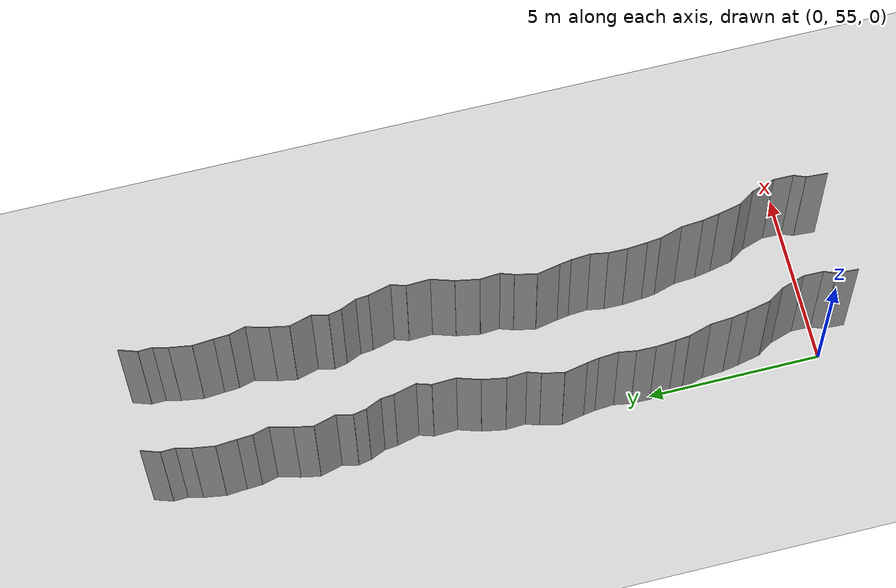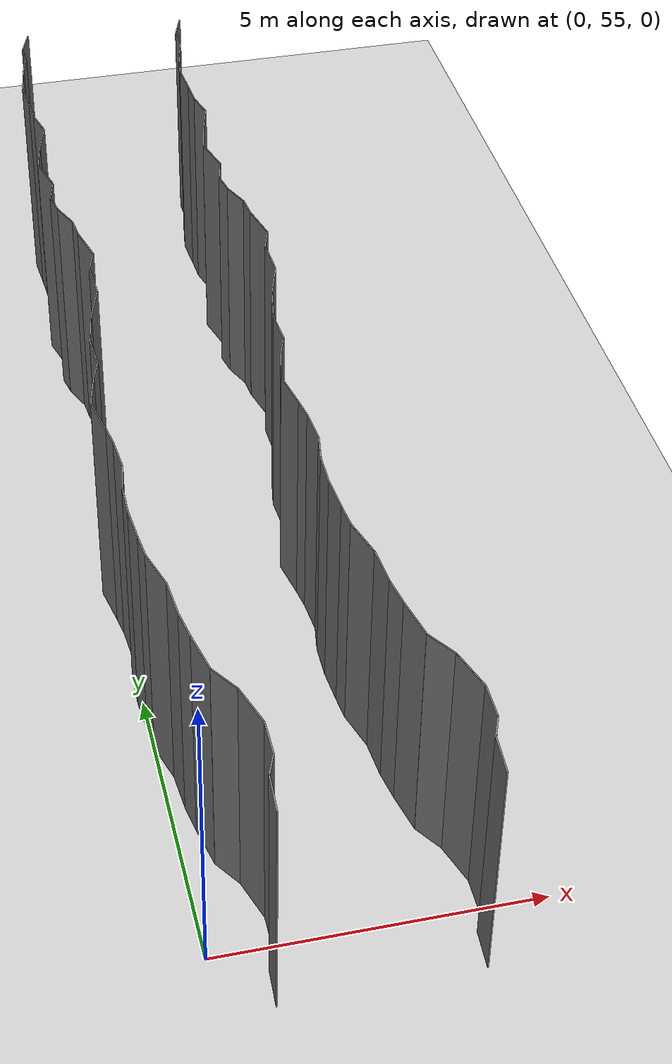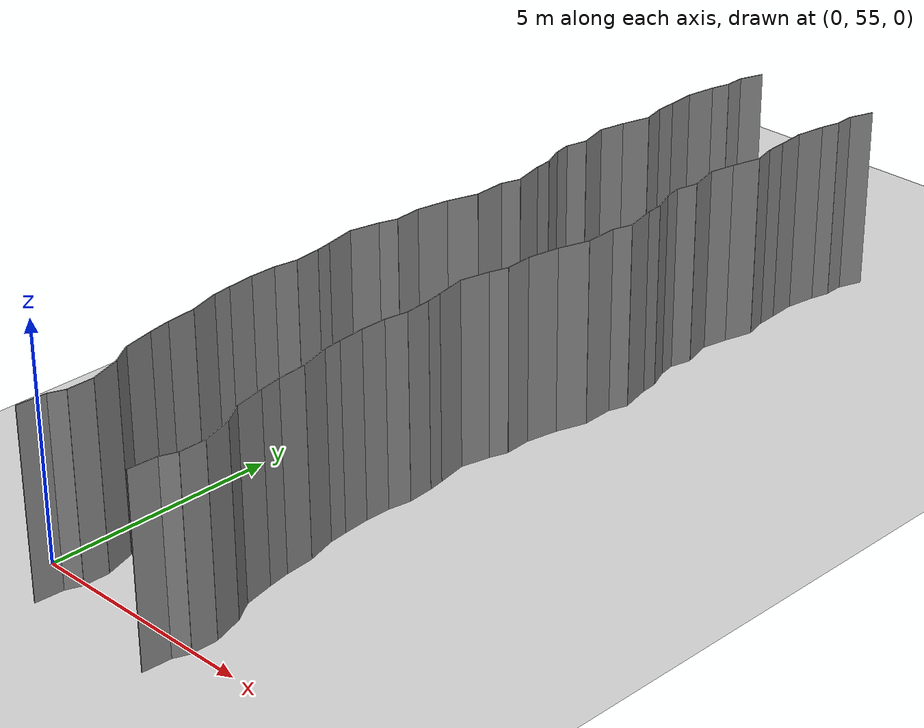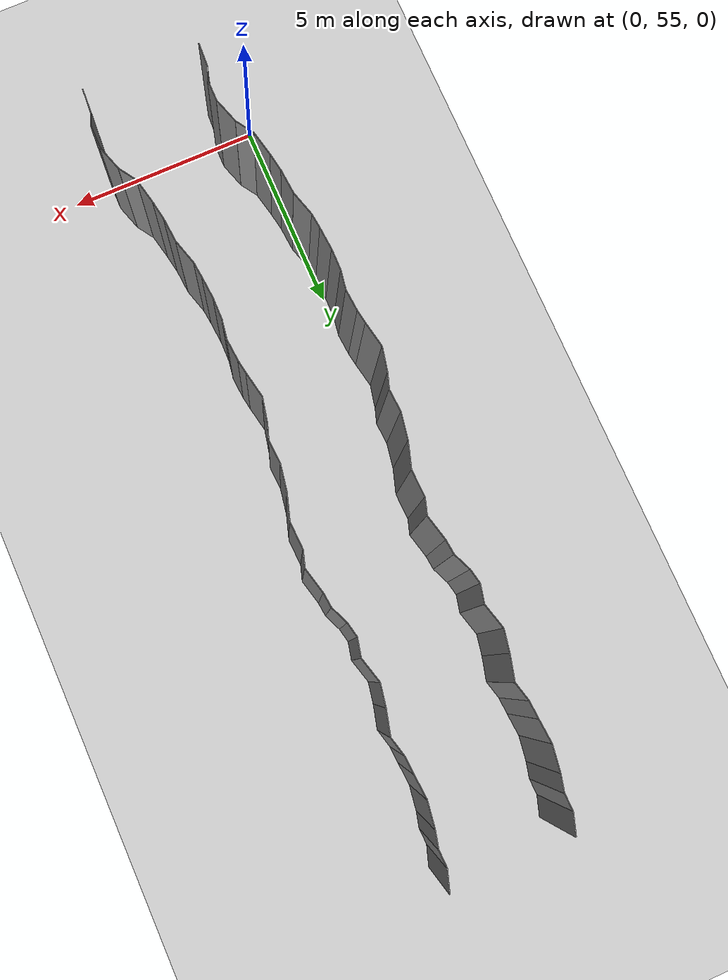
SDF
<sdf version="1.6">
 <world name="default">
  <model name="ground_plane">
   <static>1</static>
   <link name="link">
    <collision name="collision">
     <geometry><plane><normal>0 0 1</normal><size>200 200</size></plane></geometry>
     <surface><friction><ode><mu>100</mu><mu2>50</mu2></ode></friction></surface>
    </collision>
    <visual name="visual">
     <cast_shadows>0</cast_shadows>
     <geometry><plane><normal>0 0 1</normal><size>200 200</size></plane></geometry>
     <material>
      <script><uri>file://media/materials/scripts/gazebo.material</uri><name>Gazebo/Grey</name></script>
     </material>
    </visual>
   </link>
   <pose>0 100 0 0 -0 0</pose>
  </model>
  <model name="wall_224">
   <static>1</static>
   <pose>0.8056590098814278 54.31773338226374 2 0 0 -0.059114742278021895</pose>
   <link name="link">
    <collision name="collision"><geometry><box><size>0.02 0.617377208747 4</size></box></geometry></collision>
    <visual name="visual">
     <material>
      <script><name>Gazebo/Grey</name><uri>file://media/materials/scripts/gazebo.material</uri></script>
     </material>
     <geometry><box><size>0.02 0.617377208747 4</size></box></geometry>
    </visual>
   </link>
  </model>
  <model name="wall_225">
   <static>1</static>
   <pose>3.8056590098814276 54.31773338226374 2 0 0 -0.059114742278021895</pose>
   <link name="link">
    <collision name="collision"><geometry><box><size>0.02 0.617377208747 4</size></box></geometry></collision>
    <visual name="visual">
     <material>
      <script><name>Gazebo/Grey</name><uri>file://media/materials/scripts/gazebo.material</uri></script>
     </material>
     <geometry><box><size>0.02 0.617377208747 4</size></box></geometry>
    </visual>
   </link>
  </model>
  <model name="wall_226">
   <static>1</static>
   <pose>0.8901326309300028 54.79336522843904 2 0 0 -0.3766050071950121</pose>
   <link name="link">
    <collision name="collision"><geometry><box><size>0.02 0.360208855727 4</size></box></geometry></collision>
    <visual name="visual">
     <material>
      <script><name>Gazebo/Grey</name><uri>file://media/materials/scripts/gazebo.material</uri></script>
     </material>
     <geometry><box><size>0.02 0.360208855727 4</size></box></geometry>
    </visual>
   </link>
  </model>
  <model name="wall_227">
   <static>1</static>
   <pose>3.890132630930003 54.79336522843904 2 0 0 -0.3766050071950121</pose>
   <link name="link">
    <collision name="collision"><geometry><box><size>0.02 0.360208855727 4</size></box></geometry></collision>
    <visual name="visual">
     <material>
      <script><name>Gazebo/Grey</name><uri>file://media/materials/scripts/gazebo.material</uri></script>
     </material>
     <geometry><box><size>0.02 0.360208855727 4</size></box></geometry>
    </visual>
   </link>
  </model>
  <model name="wall_228">
   <static>1</static>
   <pose>0.9591205280391623 55.24517324637543 2 0 0 -0.009677677552940177</pose>
   <link name="link">
    <collision name="collision"><geometry><box><size>0.02 0.568677768005 4</size></box></geometry></collision>
    <visual name="visual">
     <material>
      <script><name>Gazebo/Grey</name><uri>file://media/materials/scripts/gazebo.material</uri></script>
     </material>
     <geometry><box><size>0.02 0.568677768005 4</size></box></geometry>
    </visual>
   </link>
  </model>
  <model name="wall_229">
   <static>1</static>
   <pose>3.959120528039162 55.24517324637543 2 0 0 -0.009677677552940177</pose>
   <link name="link">
    <collision name="collision"><geometry><box><size>0.02 0.568677768005 4</size></box></geometry></collision>
    <visual name="visual">
     <material>
      <script><name>Gazebo/Grey</name><uri>file://media/materials/scripts/gazebo.material</uri></script>
     </material>
     <geometry><box><size>0.02 0.568677768005 4</size></box></geometry>
    </visual>
   </link>
  </model>
  <model name="wall_230">
   <static>1</static>
   <pose>0.8561849291502885 55.861212692818185 2 0 0 0.3084413797041989</pose>
   <link name="link">
    <collision name="collision"><geometry><box><size>0.02 0.696287012941 4</size></box></geometry></collision>
    <visual name="visual">
     <material>
      <script><name>Gazebo/Grey</name><uri>file://media/materials/scripts/gazebo.material</uri></script>
     </material>
     <geometry><box><size>0.02 0.696287012941 4</size></box></geometry>
    </visual>
   </link>
  </model>
  <model name="wall_231">
   <static>1</static>
   <pose>3.8561849291502885 55.861212692818185 2 0 0 0.3084413797041989</pose>
   <link name="link">
    <collision name="collision"><geometry><box><size>0.02 0.696287012941 4</size></box></geometry></collision>
    <visual name="visual">
     <material>
      <script><name>Gazebo/Grey</name><uri>file://media/materials/scripts/gazebo.material</uri></script>
     </material>
     <geometry><box><size>0.02 0.696287012941 4</size></box></geometry>
    </visual>
   </link>
  </model>
  <model name="wall_232">
   <static>1</static>
   <pose>0.6079775538636059 56.411677962524635 2 0 0 0.5774403636264729</pose>
   <link name="link">
    <collision name="collision"><geometry><box><size>0.02 0.522165278712 4</size></box></geometry></collision>
    <visual name="visual">
     <material>
      <script><name>Gazebo/Grey</name><uri>file://media/materials/scripts/gazebo.material</uri></script>
     </material>
     <geometry><box><size>0.02 0.522165278712 4</size></box></geometry>
    </visual>
   </link>
  </model>
  <model name="wall_233">
   <static>1</static>
   <pose>3.6079775538636056 56.411677962524635 2 0 0 0.5774403636264729</pose>
   <link name="link">
    <collision name="collision"><geometry><box><size>0.02 0.522165278712 4</size></box></geometry></collision>
    <visual name="visual">
     <material>
      <script><name>Gazebo/Grey</name><uri>file://media/materials/scripts/gazebo.material</uri></script>
     </material>
     <geometry><box><size>0.02 0.522165278712 4</size></box></geometry>
    </visual>
   </link>
  </model>
  <model name="wall_234">
   <static>1</static>
   <pose>0.39477185082711574 56.959786793956944 2 0 0 0.21140981567310108</pose>
   <link name="link">
    <collision name="collision"><geometry><box><size>0.02 0.673714420851 4</size></box></geometry></collision>
    <visual name="visual">
     <material>
      <script><name>Gazebo/Grey</name><uri>file://media/materials/scripts/gazebo.material</uri></script>
     </material>
     <geometry><box><size>0.02 0.673714420851 4</size></box></geometry>
    </visual>
   </link>
  </model>
  <model name="wall_235">
   <static>1</static>
   <pose>3.394771850827116 56.959786793956944 2 0 0 0.21140981567310108</pose>
   <link name="link">
    <collision name="collision"><geometry><box><size>0.02 0.673714420851 4</size></box></geometry></collision>
    <visual name="visual">
     <material>
      <script><name>Gazebo/Grey</name><uri>file://media/materials/scripts/gazebo.material</uri></script>
     </material>
     <geometry><box><size>0.02 0.673714420851 4</size></box></geometry>
    </visual>
   </link>
  </model>
  <model name="wall_236">
   <static>1</static>
   <pose>0.28404481822298366 57.52552170772036 2 0 0 0.1678031059477949</pose>
   <link name="link">
    <collision name="collision"><geometry><box><size>0.02 0.479489832486 4</size></box></geometry></collision>
    <visual name="visual">
     <material>
      <script><name>Gazebo/Grey</name><uri>file://media/materials/scripts/gazebo.material</uri></script>
     </material>
     <geometry><box><size>0.02 0.479489832486 4</size></box></geometry>
    </visual>
   </link>
  </model>
  <model name="wall_237">
   <static>1</static>
   <pose>3.2840448182229838 57.52552170772036 2 0 0 0.1678031059477949</pose>
   <link name="link">
    <collision name="collision"><geometry><box><size>0.02 0.479489832486 4</size></box></geometry></collision>
    <visual name="visual">
     <material>
      <script><name>Gazebo/Grey</name><uri>file://media/materials/scripts/gazebo.material</uri></script>
     </material>
     <geometry><box><size>0.02 0.479489832486 4</size></box></geometry>
    </visual>
   </link>
  </model>
  <model name="wall_238">
   <static>1</static>
   <pose>0.22006617812332027 58.07564480737474 2 0 0 0.07614750671300541</pose>
   <link name="link">
    <collision name="collision"><geometry><box><size>0.02 0.62931489211 4</size></box></geometry></collision>
    <visual name="visual">
     <material>
      <script><name>Gazebo/Grey</name><uri>file://media/materials/scripts/gazebo.material</uri></script>
     </material>
     <geometry><box><size>0.02 0.62931489211 4</size></box></geometry>
    </visual>
   </link>
  </model>
  <model name="wall_239">
   <static>1</static>
   <pose>3.22006617812332 58.07564480737474 2 0 0 0.07614750671300541</pose>
   <link name="link">
    <collision name="collision"><geometry><box><size>0.02 0.62931489211 4</size></box></geometry></collision>
    <visual name="visual">
     <material>
      <script><name>Gazebo/Grey</name><uri>file://media/materials/scripts/gazebo.material</uri></script>
     </material>
     <geometry><box><size>0.02 0.62931489211 4</size></box></geometry>
    </visual>
   </link>
  </model>
  <model name="wall_240">
   <static>1</static>
   <pose>0.1028596452551662 58.7123552896851 2 0 0 0.28114172969462664</pose>
   <link name="link">
    <collision name="collision"><geometry><box><size>0.02 0.67232569956 4</size></box></geometry></collision>
    <visual name="visual">
     <material>
      <script><name>Gazebo/Grey</name><uri>file://media/materials/scripts/gazebo.material</uri></script>
     </material>
     <geometry><box><size>0.02 0.67232569956 4</size></box></geometry>
    </visual>
   </link>
  </model>
  <model name="wall_241">
   <static>1</static>
   <pose>3.102859645255166 58.7123552896851 2 0 0 0.28114172969462664</pose>
   <link name="link">
    <collision name="collision"><geometry><box><size>0.02 0.67232569956 4</size></box></geometry></collision>
    <visual name="visual">
     <material>
      <script><name>Gazebo/Grey</name><uri>file://media/materials/scripts/gazebo.material</uri></script>
     </material>
     <geometry><box><size>0.02 0.67232569956 4</size></box></geometry>
    </visual>
   </link>
  </model>
  <model name="wall_242">
   <static>1</static>
   <pose>-0.010414972050330328 59.23119501109996 2 0 0 0.10178022680886872</pose>
   <link name="link">
    <collision name="collision"><geometry><box><size>0.02 0.393787633695 4</size></box></geometry></collision>
    <visual name="visual">
     <material>
      <script><name>Gazebo/Grey</name><uri>file://media/materials/scripts/gazebo.material</uri></script>
     </material>
     <geometry><box><size>0.02 0.393787633695 4</size></box></geometry>
    </visual>
   </link>
  </model>
  <model name="wall_243">
   <static>1</static>
   <pose>2.9895850279496696 59.23119501109996 2 0 0 0.10178022680886872</pose>
   <link name="link">
    <collision name="collision"><geometry><box><size>0.02 0.393787633695 4</size></box></geometry></collision>
    <visual name="visual">
     <material>
      <script><name>Gazebo/Grey</name><uri>file://media/materials/scripts/gazebo.material</uri></script>
     </material>
     <geometry><box><size>0.02 0.393787633695 4</size></box></geometry>
    </visual>
   </link>
  </model>
  <model name="wall_244">
   <static>1</static>
   <pose>-0.052458481619659034 59.714779440178205 2 0 0 0.07644946724081507</pose>
   <link name="link">
    <collision name="collision"><geometry><box><size>0.02 0.577104758826 4</size></box></geometry></collision>
    <visual name="visual">
     <material>
      <script><name>Gazebo/Grey</name><uri>file://media/materials/scripts/gazebo.material</uri></script>
     </material>
     <geometry><box><size>0.02 0.577104758826 4</size></box></geometry>
    </visual>
   </link>
  </model>
  <model name="wall_245">
   <static>1</static>
   <pose>2.947541518380341 59.714779440178205 2 0 0 0.07644946724081507</pose>
   <link name="link">
    <collision name="collision"><geometry><box><size>0.02 0.577104758826 4</size></box></geometry></collision>
    <visual name="visual">
     <material>
      <script><name>Gazebo/Grey</name><uri>file://media/materials/scripts/gazebo.material</uri></script>
     </material>
     <geometry><box><size>0.02 0.577104758826 4</size></box></geometry>
    </visual>
   </link>
  </model>
  <model name="wall_246">
   <static>1</static>
   <pose>-0.07018457049333275 60.277054071006035 2 0 0 -0.015703929944146527</pose>
   <link name="link">
    <collision name="collision"><geometry><box><size>0.02 0.549197850455 4</size></box></geometry></collision>
    <visual name="visual">
     <material>
      <script><name>Gazebo/Grey</name><uri>file://media/materials/scripts/gazebo.material</uri></script>
     </material>
     <geometry><box><size>0.02 0.549197850455 4</size></box></geometry>
    </visual>
   </link>
  </model>
  <model name="wall_247">
   <static>1</static>
   <pose>2.929815429506667 60.277054071006035 2 0 0 -0.015703929944146527</pose>
   <link name="link">
    <collision name="collision"><geometry><box><size>0.02 0.549197850455 4</size></box></geometry></collision>
    <visual name="visual">
     <material>
      <script><name>Gazebo/Grey</name><uri>file://media/materials/scripts/gazebo.material</uri></script>
     </material>
     <geometry><box><size>0.02 0.549197850455 4</size></box></geometry>
    </visual>
   </link>
  </model>
  <model name="wall_248">
   <static>1</static>
   <pose>-0.02393630450463715 60.79490404957686 2 0 0 -0.1706972352340727</pose>
   <link name="link">
    <collision name="collision"><geometry><box><size>0.02 0.493745644084 4</size></box></geometry></collision>
    <visual name="visual">
     <material>
      <script><name>Gazebo/Grey</name><uri>file://media/materials/scripts/gazebo.material</uri></script>
     </material>
     <geometry><box><size>0.02 0.493745644084 4</size></box></geometry>
    </visual>
   </link>
  </model>
  <model name="wall_249">
   <static>1</static>
   <pose>2.976063695495363 60.79490404957686 2 0 0 -0.1706972352340727</pose>
   <link name="link">
    <collision name="collision"><geometry><box><size>0.02 0.493745644084 4</size></box></geometry></collision>
    <visual name="visual">
     <material>
      <script><name>Gazebo/Grey</name><uri>file://media/materials/scripts/gazebo.material</uri></script>
     </material>
     <geometry><box><size>0.02 0.493745644084 4</size></box></geometry>
    </visual>
   </link>
  </model>
  <model name="wall_250">
   <static>1</static>
   <pose>-0.0032400873763755896 61.31979634331565 2 0 0 0.07528142278861315</pose>
   <link name="link">
    <collision name="collision"><geometry><box><size>0.02 0.564814491176 4</size></box></geometry></collision>
    <visual name="visual">
     <material>
      <script><name>Gazebo/Grey</name><uri>file://media/materials/scripts/gazebo.material</uri></script>
     </material>
     <geometry><box><size>0.02 0.564814491176 4</size></box></geometry>
    </visual>
   </link>
  </model>
  <model name="wall_251">
   <static>1</static>
   <pose>2.9967599126236246 61.31979634331565 2 0 0 0.07528142278861315</pose>
   <link name="link">
    <collision name="collision"><geometry><box><size>0.02 0.564814491176 4</size></box></geometry></collision>
    <visual name="visual">
     <material>
      <script><name>Gazebo/Grey</name><uri>file://media/materials/scripts/gazebo.material</uri></script>
     </material>
     <geometry><box><size>0.02 0.564814491176 4</size></box></geometry>
    </visual>
   </link>
  </model>
  <model name="wall_252">
   <static>1</static>
   <pose>-0.05191895540577216 61.771835090424716 2 0 0 0.15962714219780696</pose>
   <link name="link">
    <collision name="collision"><geometry><box><size>0.02 0.345252053126 4</size></box></geometry></collision>
    <visual name="visual">
     <material>
      <script><name>Gazebo/Grey</name><uri>file://media/materials/scripts/gazebo.material</uri></script>
     </material>
     <geometry><box><size>0.02 0.345252053126 4</size></box></geometry>
    </visual>
   </link>
  </model>
  <model name="wall_253">
   <static>1</static>
   <pose>2.948081044594228 61.771835090424716 2 0 0 0.15962714219780696</pose>
   <link name="link">
    <collision name="collision"><geometry><box><size>0.02 0.345252053126 4</size></box></geometry></collision>
    <visual name="visual">
     <material>
      <script><name>Gazebo/Grey</name><uri>file://media/materials/scripts/gazebo.material</uri></script>
     </material>
     <geometry><box><size>0.02 0.345252053126 4</size></box></geometry>
    </visual>
   </link>
  </model>
  <model name="wall_254">
   <static>1</static>
   <pose>-0.14265088465057357 62.27265030474041 2 0 0 0.18928081034957028</pose>
   <link name="link">
    <collision name="collision"><geometry><box><size>0.02 0.672783744677 4</size></box></geometry></collision>
    <visual name="visual">
     <material>
      <script><name>Gazebo/Grey</name><uri>file://media/materials/scripts/gazebo.material</uri></script>
     </material>
     <geometry><box><size>0.02 0.672783744677 4</size></box></geometry>
    </visual>
   </link>
  </model>
  <model name="wall_255">
   <static>1</static>
   <pose>2.8573491153494266 62.27265030474041 2 0 0 0.18928081034957028</pose>
   <link name="link">
    <collision name="collision"><geometry><box><size>0.02 0.672783744677 4</size></box></geometry></collision>
    <visual name="visual">
     <material>
      <script><name>Gazebo/Grey</name><uri>file://media/materials/scripts/gazebo.material</uri></script>
     </material>
     <geometry><box><size>0.02 0.672783744677 4</size></box></geometry>
    </visual>
   </link>
  </model>
  <model name="wall_256">
   <static>1</static>
   <pose>-0.13674798947004102 62.913857924191895 2 0 0 -0.2190489300711773</pose>
   <link name="link">
    <collision name="collision"><geometry><box><size>0.02 0.636865729183 4</size></box></geometry></collision>
    <visual name="visual">
     <material>
      <script><name>Gazebo/Grey</name><uri>file://media/materials/scripts/gazebo.material</uri></script>
     </material>
     <geometry><box><size>0.02 0.636865729183 4</size></box></geometry>
    </visual>
   </link>
  </model>
  <model name="wall_257">
   <static>1</static>
   <pose>2.863252010529959 62.913857924191895 2 0 0 -0.2190489300711773</pose>
   <link name="link">
    <collision name="collision"><geometry><box><size>0.02 0.636865729183 4</size></box></geometry></collision>
    <visual name="visual">
     <material>
      <script><name>Gazebo/Grey</name><uri>file://media/materials/scripts/gazebo.material</uri></script>
     </material>
     <geometry><box><size>0.02 0.636865729183 4</size></box></geometry>
    </visual>
   </link>
  </model>
  <model name="wall_258">
   <static>1</static>
   <pose>-0.0037328185693722427 63.41366898429012 2 0 0 -0.3256671432479463</pose>
   <link name="link">
    <collision name="collision"><geometry><box><size>0.02 0.398944079968 4</size></box></geometry></collision>
    <visual name="visual">
     <material>
      <script><name>Gazebo/Grey</name><uri>file://media/materials/scripts/gazebo.material</uri></script>
     </material>
     <geometry><box><size>0.02 0.398944079968 4</size></box></geometry>
    </visual>
   </link>
  </model>
  <model name="wall_259">
   <static>1</static>
   <pose>2.996267181430628 63.41366898429012 2 0 0 -0.3256671432479463</pose>
   <link name="link">
    <collision name="collision"><geometry><box><size>0.02 0.398944079968 4</size></box></geometry></collision>
    <visual name="visual">
     <material>
      <script><name>Gazebo/Grey</name><uri>file://media/materials/scripts/gazebo.material</uri></script>
     </material>
     <geometry><box><size>0.02 0.398944079968 4</size></box></geometry>
    </visual>
   </link>
  </model>
  <model name="wall_260">
   <static>1</static>
   <pose>0.04306017160144234 63.8899680322878 2 0 0 0.05919142108449459</pose>
   <link name="link">
    <collision name="collision"><geometry><box><size>0.02 0.575631621977 4</size></box></geometry></collision>
    <visual name="visual">
     <material>
      <script><name>Gazebo/Grey</name><uri>file://media/materials/scripts/gazebo.material</uri></script>
     </material>
     <geometry><box><size>0.02 0.575631621977 4</size></box></geometry>
    </visual>
   </link>
  </model>
  <model name="wall_261">
   <static>1</static>
   <pose>3.0430601716014425 63.8899680322878 2 0 0 0.05919142108449459</pose>
   <link name="link">
    <collision name="collision"><geometry><box><size>0.02 0.575631621977 4</size></box></geometry></collision>
    <visual name="visual">
     <material>
      <script><name>Gazebo/Grey</name><uri>file://media/materials/scripts/gazebo.material</uri></script>
     </material>
     <geometry><box><size>0.02 0.575631621977 4</size></box></geometry>
    </visual>
   </link>
  </model>
  <model name="wall_262">
   <static>1</static>
   <pose>0.08830755285589298 64.51679535501415 2 0 0 -0.18140281530318764</pose>
   <link name="link">
    <collision name="collision"><geometry><box><size>0.02 0.690358825544 4</size></box></geometry></collision>
    <visual name="visual">
     <material>
      <script><name>Gazebo/Grey</name><uri>file://media/materials/scripts/gazebo.material</uri></script>
     </material>
     <geometry><box><size>0.02 0.690358825544 4</size></box></geometry>
    </visual>
   </link>
  </model>
  <model name="wall_263">
   <static>1</static>
   <pose>3.088307552855893 64.51679535501415 2 0 0 -0.18140281530318764</pose>
   <link name="link">
    <collision name="collision"><geometry><box><size>0.02 0.690358825544 4</size></box></geometry></collision>
    <visual name="visual">
     <material>
      <script><name>Gazebo/Grey</name><uri>file://media/materials/scripts/gazebo.material</uri></script>
     </material>
     <geometry><box><size>0.02 0.690358825544 4</size></box></geometry>
    </visual>
   </link>
  </model>
  <model name="wall_264">
   <static>1</static>
   <pose>0.2535493825173636 65.17911293847378 2 0 0 -0.30877960900129214</pose>
   <link name="link">
    <collision name="collision"><geometry><box><size>0.02 0.677653561949 4</size></box></geometry></collision>
    <visual name="visual">
     <material>
      <script><name>Gazebo/Grey</name><uri>file://media/materials/scripts/gazebo.material</uri></script>
     </material>
     <geometry><box><size>0.02 0.677653561949 4</size></box></geometry>
    </visual>
   </link>
  </model>
  <model name="wall_265">
   <static>1</static>
   <pose>3.2535493825173636 65.17911293847378 2 0 0 -0.30877960900129214</pose>
   <link name="link">
    <collision name="collision"><geometry><box><size>0.02 0.677653561949 4</size></box></geometry></collision>
    <visual name="visual">
     <material>
      <script><name>Gazebo/Grey</name><uri>file://media/materials/scripts/gazebo.material</uri></script>
     </material>
     <geometry><box><size>0.02 0.677653561949 4</size></box></geometry>
    </visual>
   </link>
  </model>
  <model name="wall_266">
   <static>1</static>
   <pose>0.34430869706870176 65.84596681154103 2 0 0 0.03547062031450964</pose>
   <link name="link">
    <collision name="collision"><geometry><box><size>0.02 0.688536807795 4</size></box></geometry></collision>
    <visual name="visual">
     <material>
      <script><name>Gazebo/Grey</name><uri>file://media/materials/scripts/gazebo.material</uri></script>
     </material>
     <geometry><box><size>0.02 0.688536807795 4</size></box></geometry>
    </visual>
   </link>
  </model>
  <model name="wall_267">
   <static>1</static>
   <pose>3.3443086970687017 65.84596681154103 2 0 0 0.03547062031450964</pose>
   <link name="link">
    <collision name="collision"><geometry><box><size>0.02 0.688536807795 4</size></box></geometry></collision>
    <visual name="visual">
     <material>
      <script><name>Gazebo/Grey</name><uri>file://media/materials/scripts/gazebo.material</uri></script>
     </material>
     <geometry><box><size>0.02 0.688536807795 4</size></box></geometry>
    </visual>
   </link>
  </model>
  <model name="wall_268">
   <static>1</static>
   <pose>0.3970096323827168 66.39356093662171 2 0 0 -0.3087055087747413</pose>
   <link name="link">
    <collision name="collision"><geometry><box><size>0.02 0.427283217679 4</size></box></geometry></collision>
    <visual name="visual">
     <material>
      <script><name>Gazebo/Grey</name><uri>file://media/materials/scripts/gazebo.material</uri></script>
     </material>
     <geometry><box><size>0.02 0.427283217679 4</size></box></geometry>
    </visual>
   </link>
  </model>
  <model name="wall_269">
   <static>1</static>
   <pose>3.3970096323827166 66.39356093662171 2 0 0 -0.3087055087747413</pose>
   <link name="link">
    <collision name="collision"><geometry><box><size>0.02 0.427283217679 4</size></box></geometry></collision>
    <visual name="visual">
     <material>
      <script><name>Gazebo/Grey</name><uri>file://media/materials/scripts/gazebo.material</uri></script>
     </material>
     <geometry><box><size>0.02 0.427283217679 4</size></box></geometry>
    </visual>
   </link>
  </model>
  <model name="wall_270">
   <static>1</static>
   <pose>0.38187799443035875 66.92799257853059 2 0 0 0.23733869198365862</pose>
   <link name="link">
    <collision name="collision"><geometry><box><size>0.02 0.680865347327 4</size></box></geometry></collision>
    <visual name="visual">
     <material>
      <script><name>Gazebo/Grey</name><uri>file://media/materials/scripts/gazebo.material</uri></script>
     </material>
     <geometry><box><size>0.02 0.680865347327 4</size></box></geometry>
    </visual>
   </link>
  </model>
  <model name="wall_271">
   <static>1</static>
   <pose>3.3818779944303587 66.92799257853059 2 0 0 0.23733869198365862</pose>
   <link name="link">
    <collision name="collision"><geometry><box><size>0.02 0.680865347327 4</size></box></geometry></collision>
    <visual name="visual">
     <material>
      <script><name>Gazebo/Grey</name><uri>file://media/materials/scripts/gazebo.material</uri></script>
     </material>
     <geometry><box><size>0.02 0.680865347327 4</size></box></geometry>
    </visual>
   </link>
  </model>
  <model name="wall_272">
   <static>1</static>
   <pose>0.28402922696397415 67.4435669513461 2 0 0 0.09612292532141564</pose>
   <link name="link">
    <collision name="collision"><geometry><box><size>0.02 0.371083018056 4</size></box></geometry></collision>
    <visual name="visual">
     <material>
      <script><name>Gazebo/Grey</name><uri>file://media/materials/scripts/gazebo.material</uri></script>
     </material>
     <geometry><box><size>0.02 0.371083018056 4</size></box></geometry>
    </visual>
   </link>
  </model>
  <model name="wall_273">
   <static>1</static>
   <pose>3.284029226963974 67.4435669513461 2 0 0 0.09612292532141564</pose>
   <link name="link">
    <collision name="collision"><geometry><box><size>0.02 0.371083018056 4</size></box></geometry></collision>
    <visual name="visual">
     <material>
      <script><name>Gazebo/Grey</name><uri>file://media/materials/scripts/gazebo.material</uri></script>
     </material>
     <geometry><box><size>0.02 0.371083018056 4</size></box></geometry>
    </visual>
   </link>
  </model>
  <model name="wall_274">
   <static>1</static>
   <pose>0.1711762444497515 67.85106458601688 2 0 0 0.40320143566382993</pose>
   <link name="link">
    <collision name="collision"><geometry><box><size>0.02 0.484475563923 4</size></box></geometry></collision>
    <visual name="visual">
     <material>
      <script><name>Gazebo/Grey</name><uri>file://media/materials/scripts/gazebo.material</uri></script>
     </material>
     <geometry><box><size>0.02 0.484475563923 4</size></box></geometry>
    </visual>
   </link>
  </model>
  <model name="wall_275">
   <static>1</static>
   <pose>3.1711762444497515 67.85106458601688 2 0 0 0.40320143566382993</pose>
   <link name="link">
    <collision name="collision"><geometry><box><size>0.02 0.484475563923 4</size></box></geometry></collision>
    <visual name="visual">
     <material>
      <script><name>Gazebo/Grey</name><uri>file://media/materials/scripts/gazebo.material</uri></script>
     </material>
     <geometry><box><size>0.02 0.484475563923 4</size></box></geometry>
    </visual>
   </link>
  </model>
  <model name="wall_276">
   <static>1</static>
   <pose>0.038631757710118446 68.25995933671437 2 0 0 0.19885448332680716</pose>
   <link name="link">
    <collision name="collision"><geometry><box><size>0.02 0.379645720396 4</size></box></geometry></collision>
    <visual name="visual">
     <material>
      <script><name>Gazebo/Grey</name><uri>file://media/materials/scripts/gazebo.material</uri></script>
     </material>
     <geometry><box><size>0.02 0.379645720396 4</size></box></geometry>
    </visual>
   </link>
  </model>
  <model name="wall_277">
   <static>1</static>
   <pose>3.0386317577101183 68.25995933671437 2 0 0 0.19885448332680716</pose>
   <link name="link">
    <collision name="collision"><geometry><box><size>0.02 0.379645720396 4</size></box></geometry></collision>
    <visual name="visual">
     <material>
      <script><name>Gazebo/Grey</name><uri>file://media/materials/scripts/gazebo.material</uri></script>
     </material>
     <geometry><box><size>0.02 0.379645720396 4</size></box></geometry>
    </visual>
   </link>
  </model>
  <model name="wall_278">
   <static>1</static>
   <pose>0.055573286674394005 68.67601873140882 2 0 0 -0.23244195001066859</pose>
   <link name="link">
    <collision name="collision"><geometry><box><size>0.02 0.472666063246 4</size></box></geometry></collision>
    <visual name="visual">
     <material>
      <script><name>Gazebo/Grey</name><uri>file://media/materials/scripts/gazebo.material</uri></script>
     </material>
     <geometry><box><size>0.02 0.472666063246 4</size></box></geometry>
    </visual>
   </link>
  </model>
  <model name="wall_279">
   <static>1</static>
   <pose>3.055573286674394 68.67601873140882 2 0 0 -0.23244195001066859</pose>
   <link name="link">
    <collision name="collision"><geometry><box><size>0.02 0.472666063246 4</size></box></geometry></collision>
    <visual name="visual">
     <material>
      <script><name>Gazebo/Grey</name><uri>file://media/materials/scripts/gazebo.material</uri></script>
     </material>
     <geometry><box><size>0.02 0.472666063246 4</size></box></geometry>
    </visual>
   </link>
  </model>
  <model name="wall_280">
   <static>1</static>
   <pose>0.02393081811596462 69.22922816102275 2 0 0 0.2602777170926709</pose>
   <link name="link">
    <collision name="collision"><geometry><box><size>0.02 0.668997102759 4</size></box></geometry></collision>
    <visual name="visual">
     <material>
      <script><name>Gazebo/Grey</name><uri>file://media/materials/scripts/gazebo.material</uri></script>
     </material>
     <geometry><box><size>0.02 0.668997102759 4</size></box></geometry>
    </visual>
   </link>
  </model>
  <model name="wall_281">
   <static>1</static>
   <pose>3.0239308181159648 69.22922816102275 2 0 0 0.2602777170926709</pose>
   <link name="link">
    <collision name="collision"><geometry><box><size>0.02 0.668997102759 4</size></box></geometry></collision>
    <visual name="visual">
     <material>
      <script><name>Gazebo/Grey</name><uri>file://media/materials/scripts/gazebo.material</uri></script>
     </material>
     <geometry><box><size>0.02 0.668997102759 4</size></box></geometry>
    </visual>
   </link>
  </model>
  <model name="wall_282">
   <static>1</static>
   <pose>-0.00862486533247539 69.82892676614101 2 0 0 -0.19124555356115056</pose>
   <link name="link">
    <collision name="collision"><geometry><box><size>0.02 0.563201049768 4</size></box></geometry></collision>
    <visual name="visual">
     <material>
      <script><name>Gazebo/Grey</name><uri>file://media/materials/scripts/gazebo.material</uri></script>
     </material>
     <geometry><box><size>0.02 0.563201049768 4</size></box></geometry>
    </visual>
   </link>
  </model>
  <model name="wall_283">
   <static>1</static>
   <pose>2.991375134667525 69.82892676614101 2 0 0 -0.19124555356115056</pose>
   <link name="link">
    <collision name="collision"><geometry><box><size>0.02 0.563201049768 4</size></box></geometry></collision>
    <visual name="visual">
     <material>
      <script><name>Gazebo/Grey</name><uri>file://media/materials/scripts/gazebo.material</uri></script>
     </material>
     <geometry><box><size>0.02 0.563201049768 4</size></box></geometry>
    </visual>
   </link>
  </model>
  <model name="wall_284">
   <static>1</static>
   <pose>0.12800739822412643 70.4187484411171 2 0 0 -0.2592424344473137</pose>
   <link name="link">
    <collision name="collision"><geometry><box><size>0.02 0.64837629324 4</size></box></geometry></collision>
    <visual name="visual">
     <material>
      <script><name>Gazebo/Grey</name><uri>file://media/materials/scripts/gazebo.material</uri></script>
     </material>
     <geometry><box><size>0.02 0.64837629324 4</size></box></geometry>
    </visual>
   </link>
  </model>
  <model name="wall_285">
   <static>1</static>
   <pose>3.1280073982241263 70.4187484411171 2 0 0 -0.2592424344473137</pose>
   <link name="link">
    <collision name="collision"><geometry><box><size>0.02 0.64837629324 4</size></box></geometry></collision>
    <visual name="visual">
     <material>
      <script><name>Gazebo/Grey</name><uri>file://media/materials/scripts/gazebo.material</uri></script>
     </material>
     <geometry><box><size>0.02 0.64837629324 4</size></box></geometry>
    </visual>
   </link>
  </model>
  <model name="wall_286">
   <static>1</static>
   <pose>0.15122906988424442 70.96966934902017 2 0 0 0.246926939535447</pose>
   <link name="link">
    <collision name="collision"><geometry><box><size>0.02 0.489993795756 4</size></box></geometry></collision>
    <visual name="visual">
     <material>
      <script><name>Gazebo/Grey</name><uri>file://media/materials/scripts/gazebo.material</uri></script>
     </material>
     <geometry><box><size>0.02 0.489993795756 4</size></box></geometry>
    </visual>
   </link>
  </model>
  <model name="wall_287">
   <static>1</static>
   <pose>3.1512290698842444 70.96966934902017 2 0 0 0.246926939535447</pose>
   <link name="link">
    <collision name="collision"><geometry><box><size>0.02 0.489993795756 4</size></box></geometry></collision>
    <visual name="visual">
     <material>
      <script><name>Gazebo/Grey</name><uri>file://media/materials/scripts/gazebo.material</uri></script>
     </material>
     <geometry><box><size>0.02 0.489993795756 4</size></box></geometry>
    </visual>
   </link>
  </model>
  <model name="wall_288">
   <static>1</static>
   <pose>0.07833478669823765 71.42766401124831 2 0 0 0.0589567320061567</pose>
   <link name="link">
    <collision name="collision"><geometry><box><size>0.02 0.44162525494 4</size></box></geometry></collision>
    <visual name="visual">
     <material>
      <script><name>Gazebo/Grey</name><uri>file://media/materials/scripts/gazebo.material</uri></script>
     </material>
     <geometry><box><size>0.02 0.44162525494 4</size></box></geometry>
    </visual>
   </link>
  </model>
  <model name="wall_289">
   <static>1</static>
   <pose>3.0783347866982376 71.42766401124831 2 0 0 0.0589567320061567</pose>
   <link name="link">
    <collision name="collision"><geometry><box><size>0.02 0.44162525494 4</size></box></geometry></collision>
    <visual name="visual">
     <material>
      <script><name>Gazebo/Grey</name><uri>file://media/materials/scripts/gazebo.material</uri></script>
     </material>
     <geometry><box><size>0.02 0.44162525494 4</size></box></geometry>
    </visual>
   </link>
  </model>
  <model name="wall_290">
   <static>1</static>
   <pose>0.043538396096124775 71.9467836735877 2 0 0 0.07280786686063387</pose>
   <link name="link">
    <collision name="collision"><geometry><box><size>0.02 0.598968228991 4</size></box></geometry></collision>
    <visual name="visual">
     <material>
      <script><name>Gazebo/Grey</name><uri>file://media/materials/scripts/gazebo.material</uri></script>
     </material>
     <geometry><box><size>0.02 0.598968228991 4</size></box></geometry>
    </visual>
   </link>
  </model>
  <model name="wall_291">
   <static>1</static>
   <pose>3.0435383960961246 71.9467836735877 2 0 0 0.07280786686063387</pose>
   <link name="link">
    <collision name="collision"><geometry><box><size>0.02 0.598968228991 4</size></box></geometry></collision>
    <visual name="visual">
     <material>
      <script><name>Gazebo/Grey</name><uri>file://media/materials/scripts/gazebo.material</uri></script>
     </material>
     <geometry><box><size>0.02 0.598968228991 4</size></box></geometry>
    </visual>
   </link>
  </model>
  <model name="wall_292">
   <static>1</static>
   <pose>0.07160004314723711 72.56763188354779 2 0 0 -0.15351187606421132</pose>
   <link name="link">
    <collision name="collision"><geometry><box><size>0.02 0.651982248866 4</size></box></geometry></collision>
    <visual name="visual">
     <material>
      <script><name>Gazebo/Grey</name><uri>file://media/materials/scripts/gazebo.material</uri></script>
     </material>
     <geometry><box><size>0.02 0.651982248866 4</size></box></geometry>
    </visual>
   </link>
  </model>
  <model name="wall_293">
   <static>1</static>
   <pose>3.071600043147237 72.56763188354779 2 0 0 -0.15351187606421132</pose>
   <link name="link">
    <collision name="collision"><geometry><box><size>0.02 0.651982248866 4</size></box></geometry></collision>
    <visual name="visual">
     <material>
      <script><name>Gazebo/Grey</name><uri>file://media/materials/scripts/gazebo.material</uri></script>
     </material>
     <geometry><box><size>0.02 0.651982248866 4</size></box></geometry>
    </visual>
   </link>
  </model>
  <model name="wall_294">
   <static>1</static>
   <pose>0.17395324121000866 73.0973881652979 2 0 0 -0.24772560851531186</pose>
   <link name="link">
    <collision name="collision"><geometry><box><size>0.02 0.428271525259 4</size></box></geometry></collision>
    <visual name="visual">
     <material>
      <script><name>Gazebo/Grey</name><uri>file://media/materials/scripts/gazebo.material</uri></script>
     </material>
     <geometry><box><size>0.02 0.428271525259 4</size></box></geometry>
    </visual>
   </link>
  </model>
  <model name="wall_295">
   <static>1</static>
   <pose>3.1739532412100084 73.0973881652979 2 0 0 -0.24772560851531186</pose>
   <link name="link">
    <collision name="collision"><geometry><box><size>0.02 0.428271525259 4</size></box></geometry></collision>
    <visual name="visual">
     <material>
      <script><name>Gazebo/Grey</name><uri>file://media/materials/scripts/gazebo.material</uri></script>
     </material>
     <geometry><box><size>0.02 0.428271525259 4</size></box></geometry>
    </visual>
   </link>
  </model>
  <model name="wall_296">
   <static>1</static>
   <pose>0.22025787972935668 73.51239813727811 2 0 0 0.0298900202481693</pose>
   <link name="link">
    <collision name="collision"><geometry><box><size>0.02 0.415007804098 4</size></box></geometry></collision>
    <visual name="visual">
     <material>
      <script><name>Gazebo/Grey</name><uri>file://media/materials/scripts/gazebo.material</uri></script>
     </material>
     <geometry><box><size>0.02 0.415007804098 4</size></box></geometry>
    </visual>
   </link>
  </model>
  <model name="wall_297">
   <static>1</static>
   <pose>3.2202578797293566 73.51239813727811 2 0 0 0.0298900202481693</pose>
   <link name="link">
    <collision name="collision"><geometry><box><size>0.02 0.415007804098 4</size></box></geometry></collision>
    <visual name="visual">
     <material>
      <script><name>Gazebo/Grey</name><uri>file://media/materials/scripts/gazebo.material</uri></script>
     </material>
     <geometry><box><size>0.02 0.415007804098 4</size></box></geometry>
    </visual>
   </link>
  </model>
  <model name="wall_298">
   <static>1</static>
   <pose>0.30182325516813846 73.98112960144394 2 0 0 -0.3240218964781725</pose>
   <link name="link">
    <collision name="collision"><geometry><box><size>0.02 0.551330297875 4</size></box></geometry></collision>
    <visual name="visual">
     <material>
      <script><name>Gazebo/Grey</name><uri>file://media/materials/scripts/gazebo.material</uri></script>
     </material>
     <geometry><box><size>0.02 0.551330297875 4</size></box></geometry>
    </visual>
   </link>
  </model>
  <model name="wall_299">
   <static>1</static>
   <pose>3.3018232551681383 73.98112960144394 2 0 0 -0.3240218964781725</pose>
   <link name="link">
    <collision name="collision"><geometry><box><size>0.02 0.551330297875 4</size></box></geometry></collision>
    <visual name="visual">
     <material>
      <script><name>Gazebo/Grey</name><uri>file://media/materials/scripts/gazebo.material</uri></script>
     </material>
     <geometry><box><size>0.02 0.551330297875 4</size></box></geometry>
    </visual>
   </link>
  </model>
 </world>
</sdf>
